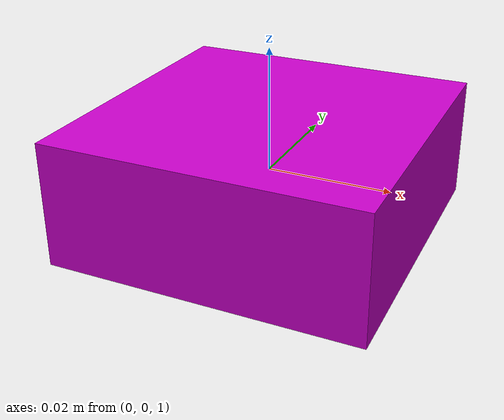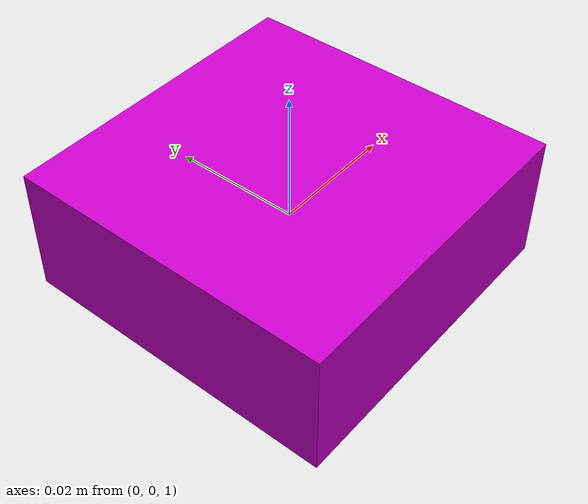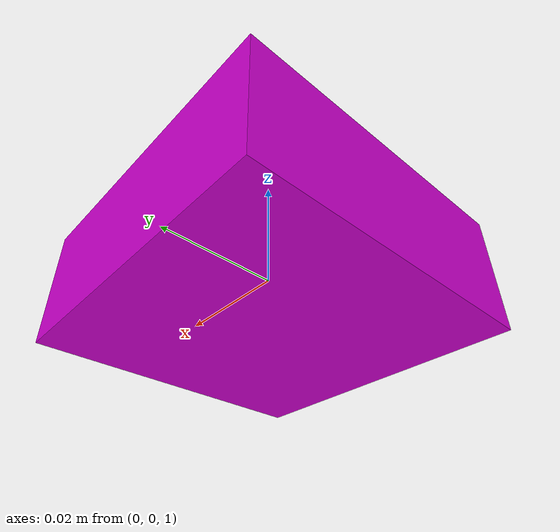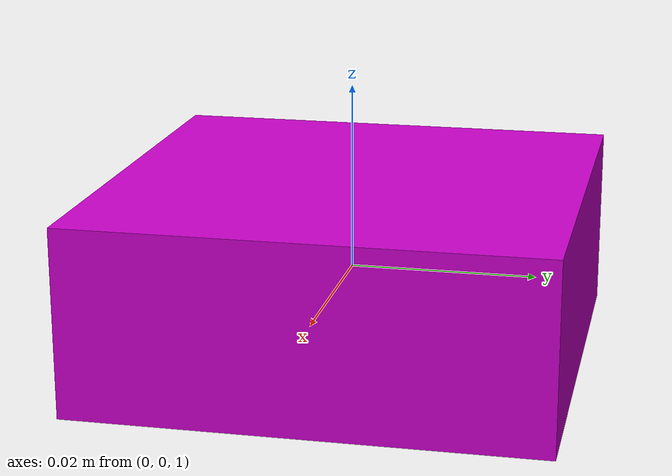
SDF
<?xml version="1.0"?>
<sdf version="1.6">
  <model name="imu_sensor">
    <static>true</static>
    <pose>0 0 1.0 0 0 0</pose>

    <!-- Link -->
    <link name="imu_link">
      <collision name="collision">
        <geometry>
          <box>
            <size>0.05 0.05 0.02</size>
          </box>
        </geometry>
      </collision>
      <visual name="visual">
        <geometry>
          <box>
            <size>0.05 0.05 0.02</size>
          </box>
        </geometry>
        <material>
          <ambient>0.8 0.0 0.8 1</ambient>
          <diffuse>0.8 0.0 0.8 1</diffuse>
        </material>
      </visual>

      <!-- IMU Sensor -->
      <sensor name="imu" type="imu">
        <always_on>true</always_on>
        <update_rate>200.0</update_rate>

        <imu>
          <noise>
            <type>gaussian</type>
            <rate>
              <mean>0</mean>
              <stddev>0.0</stddev>
            </rate>
            <acceleration>
              <mean>0</mean>
              <stddev>0.0</stddev>
            </acceleration>
          </noise>
        </imu>

        <!-- ROS2 Plugin -->
        <plugin name="imu_controller" filename="libgazebo_ros_imu_sensor.so">
          <ros>
            <namespace>/sensors</namespace>
            <remapping>imu/data:=imu/data</remapping>
          </ros>
          <frame_name>imu_link</frame_name>
          <topic_name>imu/data</topic_name>
          <update_rate>200.0</update_rate>
          <gaussian_noise>0.0</gaussian_noise>
        </plugin>
      </sensor>
    </link>
  </model>
</sdf>
